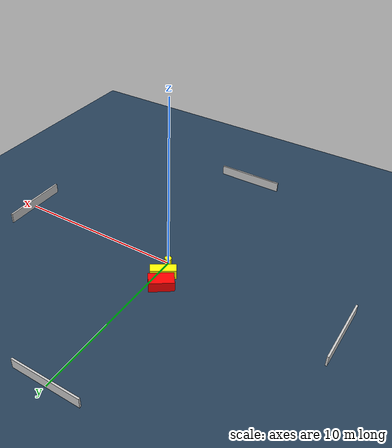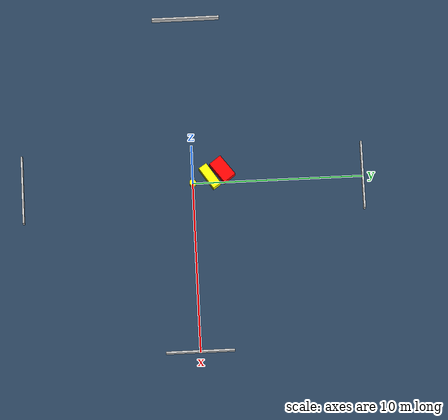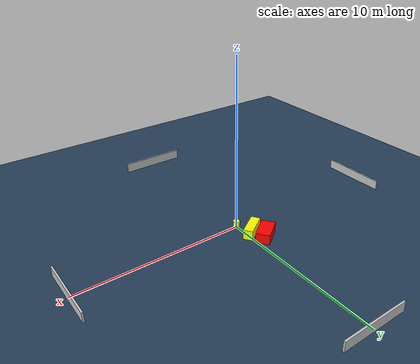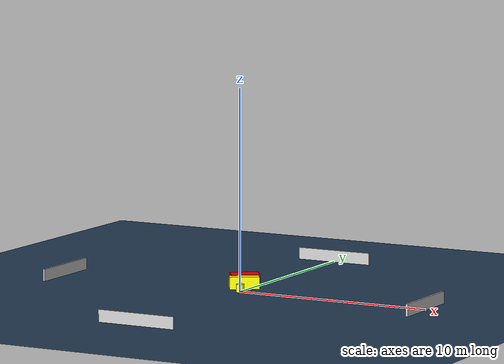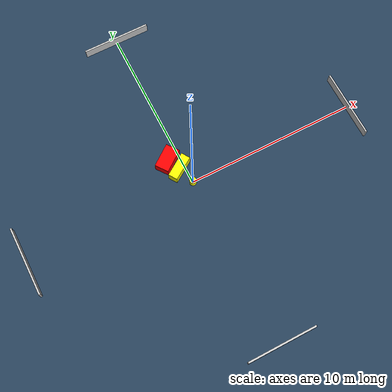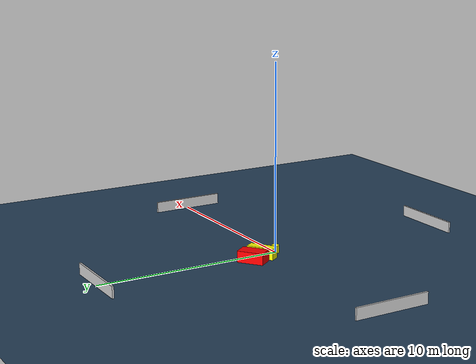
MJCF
<?xml version="1.0" ?>
<mujoco model="generated_environment">
  <option timestep="0.01" integrator="RK4" cone="elliptic"/>
  <default>
    <geom density="1"/>
  </default>
  <asset>
    <texture builtin="gradient" height="3072" name="skybox" rgb1="0.3 0.5 0.7" rgb2="0 0 0" type="skybox" width="512"/>
    <texture builtin="checker" height="300" name="groundplane" rgb1="0.2 0.3 0.4" rgb2="0.1 0.2 0.3" type="2d" width="300"/>
    <material name="groundplane" reflectance="0.2" texrepeat="5 5" texture="groundplane"/>
  </asset>
  <worldbody>
    <light dir="0 0 -1" directional="true" pos="0 0 1.5"/>
    <geom condim="3" friction="0.5 0.005 0.001" material="groundplane" name="floor" pos="0 0 0" size="0 0 0.05" type="plane"/>
    <body name="walls">
      <geom name="wall_1" condim="4" pos="-10.0 0.0 0.3" rgba="0.800000011920929 0.800000011920929 0.800000011920929 1.0" size="0.05 2.0 0.3" type="box"/>
      <geom name="wall_2" condim="4" pos="10.0 0.0 0.3" rgba="0.800000011920929 0.800000011920929 0.800000011920929 1.0" size="0.05 2.0 0.3" type="box"/>
      <geom name="wall_3" condim="4" pos="0.0 -10.0 0.3" rgba="0.800000011920929 0.800000011920929 0.800000011920929 1.0" size="2.0 0.05 0.3" type="box"/>
      <geom name="wall_4" condim="4" pos="0.0 10.0 0.3" rgba="0.800000011920929 0.800000011920929 0.800000011920929 1.0" size="2.0 0.05 0.3" type="box"/>
    </body>
    <body name="robot">
      <joint name="joint_x" type="slide" pos="0 0 0" axis="1 0 0"/>
      <joint name="joint_y" type="slide" pos="0 0 0" axis="0 1 0"/>
      <geom name="robot" type="cylinder" pos="0.0 0.0 0.2" size="0.2 0.2 0.0" mass="5.0" friction="1.0 0.005 0.0001" condim="4" rgba="1.0 1.0 0.0 1.0"/>
    </body>
    <body name="obstacle_1_movable">
      <geom name="obstacle_1_movable" condim="4" pos="-0.3310563707379626 1.0147327544431632 0.3" euler="0 0 123.55618894726376" friction="0.0 0.005 0.001" rgba="1.0 1.0 0.0 1.0" size="0.2702980540366844 0.734220940264863 0.3" type="box" mass="0.1"/>
      <joint type="free"/>
    </body>
    <body name="obstacle_2_static">
      <geom name="obstacle_2_static" condim="4" pos="-0.704818879174016 1.7660625076201422 0.3" euler="0 0 216.7531985378307" friction="0.0 0.005 0.001" rgba="1.0 0.0 0.0 1.0" size="0.702600052766035 0.4109843368959313 0.3" type="box"/>
    </body>
  </worldbody>
  <actuator>
    <motor name="actuator_x" joint="joint_x" gear="1" ctrlrange="-1 1"/>
    <motor name="actuator_y" joint="joint_y" gear="1" ctrlrange="-1 1"/>
  </actuator>
</mujoco>
